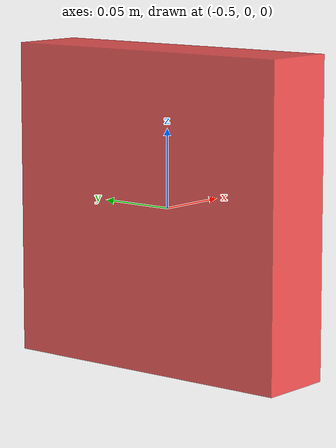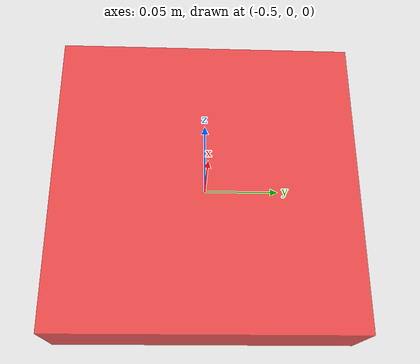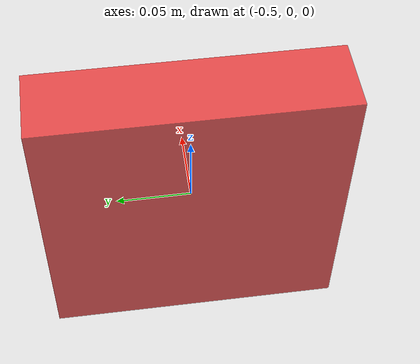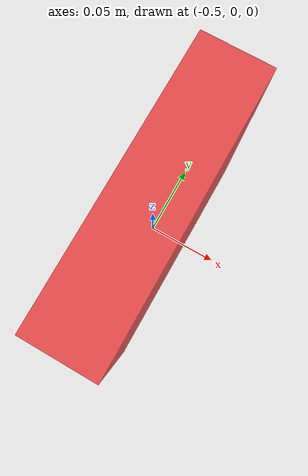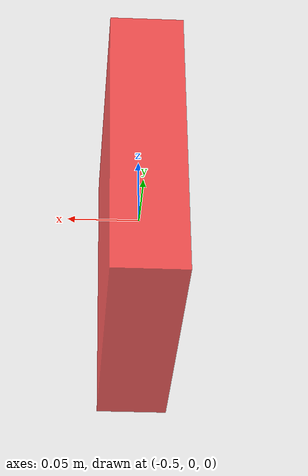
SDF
<?xml version="1.0"?>
<sdf version="1.7">
  <model name="left_finger">
    <link name="left_link">
      <pose>-0.5 0 0 0 0 0</pose>
      <inertial>
        <pose>0 0 0 0 0 0</pose>
        <mass>0.5</mass>
        <inertia>
          <ixx>0.000208</ixx>
          <ixy>0</ixy>
          <ixz>0</ixz>
          <iyy>0.000208</iyy>
          <iyz>0</iyz>
          <izz>0.000208</izz>
        </inertia>
      </inertial>
      <visual name="visual">
        <pose>0 0 0 0 0 0</pose>
        <geometry>
          <box>
            <size>0.05 0.2 0.2</size>
          </box>
        </geometry>
        <material>
          <diffuse>1 0.2 0.2 0.8</diffuse>
        </material>
      </visual>
      <collision name="collision">
        <pose>0 0 0 0 0 0</pose>
        <geometry>
          <box>
            <size>0.05 0.2 0.2</size>
          </box>
        </geometry>
        <drake:proximity_properties>
          <drake:point_contact_stiffness>1</drake:point_contact_stiffness>
          <drake:compliant_hydroelastic/>
          <drake:hydroelastic_modulus>3e7</drake:hydroelastic_modulus>
          <drake:mesh_resolution_hint>0.0005</drake:mesh_resolution_hint>
	        <drake:hunt_crossley_dissipation>1.25</drake:hunt_crossley_dissipation>
          <drake:mu_dynamic>0.9</drake:mu_dynamic>
          <drake:mu_static>0.9</drake:mu_static>
        </drake:proximity_properties>
      </collision>
    </link>
  </model>
</sdf>
